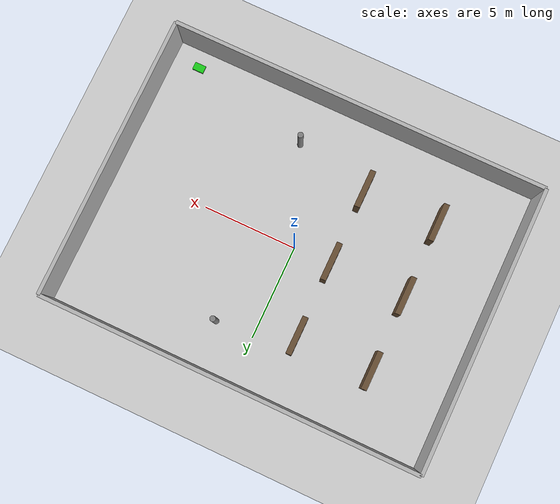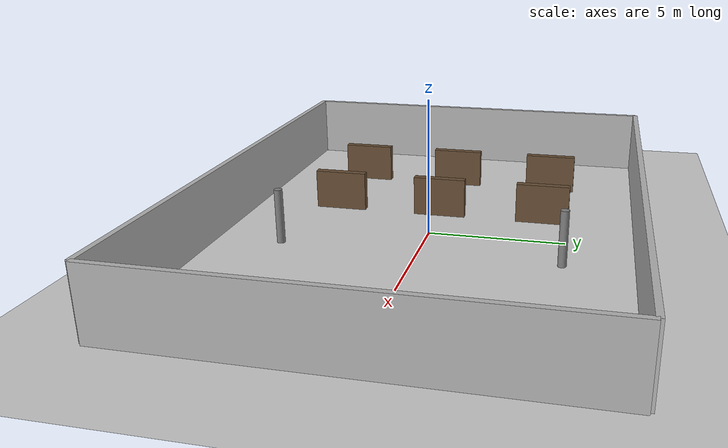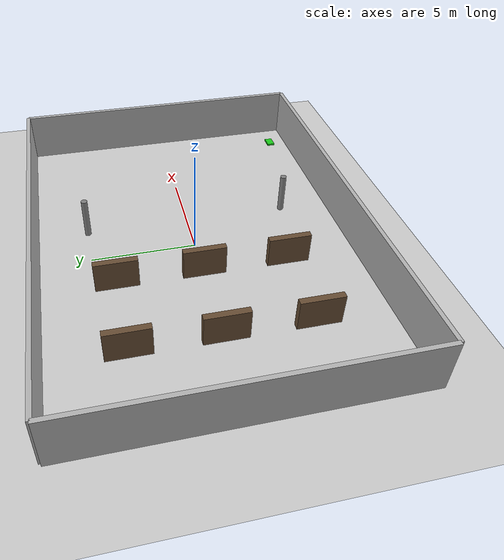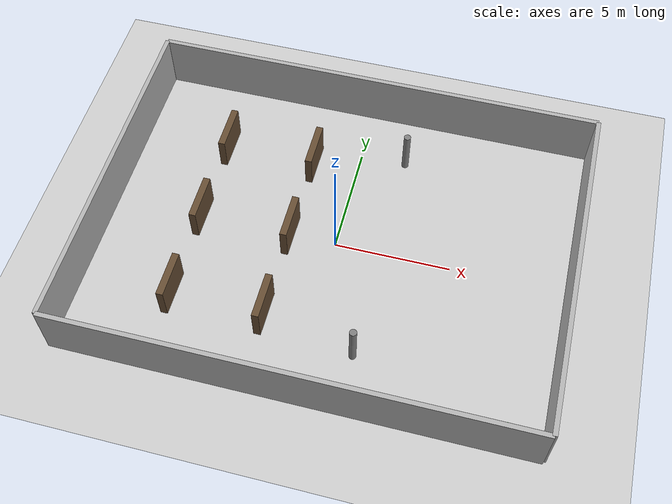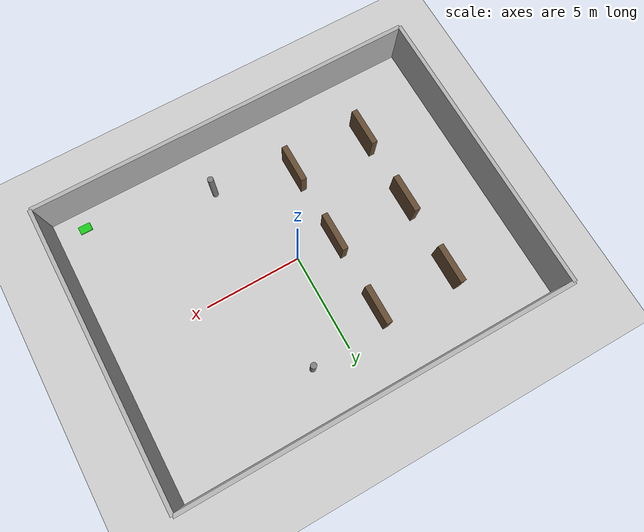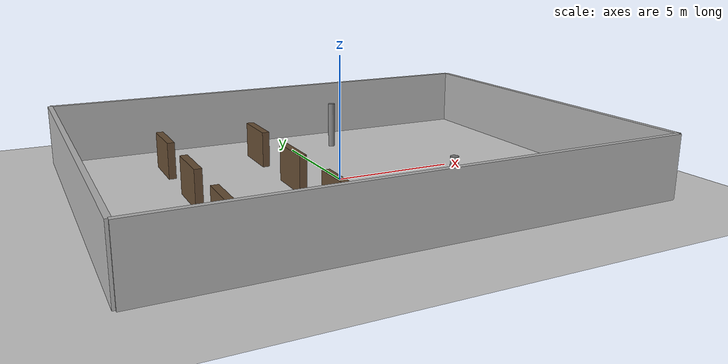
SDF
<?xml version="1.0" ?>
<sdf version="1.7">
  <world name="glad_warehouse">

    <gravity>0 0 -9.81</gravity>
    <magnetic_field>6e-06 2.3e-05 -4.2e-05</magnetic_field>
    <atmosphere type="adiabatic"/>

    <scene>
      <ambient>0.5 0.5 0.5 1.0</ambient>
      <background>0.7 0.7 0.7 1.0</background>
      <shadows>true</shadows>
    </scene>

    <physics type="ode">
      <max_step_size>0.001</max_step_size>
      <real_time_factor>1.0</real_time_factor>
      <real_time_update_rate>1000.0</real_time_update_rate>
    </physics>

    <!-- Gazebo Harmonic System Plugins -->
    <plugin filename="gz-sim-physics-system" name="gz::sim::systems::Physics" />
    <plugin filename="gz-sim-user-commands-system" name="gz::sim::systems::UserCommands" />
    <plugin filename="gz-sim-scene-broadcaster-system" name="gz::sim::systems::SceneBroadcaster" />
    <plugin filename="gz-sim-sensors-system" name="gz::sim::systems::Sensors">
      <render_engine>ogre2</render_engine>
    </plugin>
    <plugin filename="gz-sim-imu-system" name="gz::sim::systems::Imu" />

    <!-- Ground plane -->

    <include>
      <uri>model://ground_plane</uri>
    </include>

    <!-- Sunlight -->
    <include>
      <uri>model://sun</uri>
    </include>

    <!-- ============================================================
         Warehouse outer walls  (20 m x 15 m building)
         ============================================================ -->

    <!-- South wall -->
    <model name="wall_south">
      <static>true</static>
      <pose>0 -7.5 1.25 0 0 0</pose>
      <link name="link">
        <collision name="collision">
          <geometry><box><size>20.0 0.2 2.5</size></box></geometry>
        </collision>
        <visual name="visual">
          <geometry><box><size>20.0 0.2 2.5</size></box></geometry>
          <material><ambient>0.7 0.7 0.7 1</ambient></material>
        </visual>
      </link>
    </model>

    <!-- North wall -->
    <model name="wall_north">
      <static>true</static>
      <pose>0 7.5 1.25 0 0 0</pose>
      <link name="link">
        <collision name="collision">
          <geometry><box><size>20.0 0.2 2.5</size></box></geometry>
        </collision>
        <visual name="visual">
          <geometry><box><size>20.0 0.2 2.5</size></box></geometry>
          <material><ambient>0.7 0.7 0.7 1</ambient></material>
        </visual>
      </link>
    </model>

    <!-- West wall -->
    <model name="wall_west">
      <static>true</static>
      <pose>-10 0 1.25 0 0 0</pose>
      <link name="link">
        <collision name="collision">
          <geometry><box><size>0.2 15.0 2.5</size></box></geometry>
        </collision>
        <visual name="visual">
          <geometry><box><size>0.2 15.0 2.5</size></box></geometry>
          <material><ambient>0.7 0.7 0.7 1</ambient></material>
        </visual>
      </link>
    </model>

    <!-- East wall -->
    <model name="wall_east">
      <static>true</static>
      <pose>10 0 1.25 0 0 0</pose>
      <link name="link">
        <collision name="collision">
          <geometry><box><size>0.2 15.0 2.5</size></box></geometry>
        </collision>
        <visual name="visual">
          <geometry><box><size>0.2 15.0 2.5</size></box></geometry>
          <material><ambient>0.7 0.7 0.7 1</ambient></material>
        </visual>
      </link>
    </model>

    <!-- ============================================================
         Shelf obstacles (0.3 m wide x 2.0 m long x 1.5 m tall)
         ============================================================ -->

    <model name="shelf_1">
      <static>true</static>
      <pose>-6 -4 0.75 0 0 0</pose>
      <link name="link">
        <collision name="collision">
          <geometry><box><size>0.3 2.0 1.5</size></box></geometry>
        </collision>
        <visual name="visual">
          <geometry><box><size>0.3 2.0 1.5</size></box></geometry>
          <material><ambient>0.4 0.3 0.2 1</ambient></material>
        </visual>
      </link>
    </model>

    <model name="shelf_2">
      <static>true</static>
      <pose>-6 0 0.75 0 0 0</pose>
      <link name="link">
        <collision name="collision">
          <geometry><box><size>0.3 2.0 1.5</size></box></geometry>
        </collision>
        <visual name="visual">
          <geometry><box><size>0.3 2.0 1.5</size></box></geometry>
          <material><ambient>0.4 0.3 0.2 1</ambient></material>
        </visual>
      </link>
    </model>

    <model name="shelf_3">
      <static>true</static>
      <pose>-6 4 0.75 0 0 0</pose>
      <link name="link">
        <collision name="collision">
          <geometry><box><size>0.3 2.0 1.5</size></box></geometry>
        </collision>
        <visual name="visual">
          <geometry><box><size>0.3 2.0 1.5</size></box></geometry>
          <material><ambient>0.4 0.3 0.2 1</ambient></material>
        </visual>
      </link>
    </model>

    <model name="shelf_4">
      <static>true</static>
      <pose>-2 -4 0.75 0 0 0</pose>
      <link name="link">
        <collision name="collision">
          <geometry><box><size>0.3 2.0 1.5</size></box></geometry>
        </collision>
        <visual name="visual">
          <geometry><box><size>0.3 2.0 1.5</size></box></geometry>
          <material><ambient>0.4 0.3 0.2 1</ambient></material>
        </visual>
      </link>
    </model>

    <model name="shelf_5">
      <static>true</static>
      <pose>-2 0 0.75 0 0 0</pose>
      <link name="link">
        <collision name="collision">
          <geometry><box><size>0.3 2.0 1.5</size></box></geometry>
        </collision>
        <visual name="visual">
          <geometry><box><size>0.3 2.0 1.5</size></box></geometry>
          <material><ambient>0.4 0.3 0.2 1</ambient></material>
        </visual>
      </link>
    </model>

    <model name="shelf_6">
      <static>true</static>
      <pose>-2 4 0.75 0 0 0</pose>
      <link name="link">
        <collision name="collision">
          <geometry><box><size>0.3 2.0 1.5</size></box></geometry>
        </collision>
        <visual name="visual">
          <geometry><box><size>0.3 2.0 1.5</size></box></geometry>
          <material><ambient>0.4 0.3 0.2 1</ambient></material>
        </visual>
      </link>
    </model>

    <!-- ============================================================
         Charging station dock (south-east corner)
         ============================================================ -->
    <model name="charging_station">
      <static>true</static>
      <pose>8.5 -6.5 0.05 0 0 0</pose>
      <link name="link">
        <collision name="collision">
          <geometry><box><size>0.6 0.4 0.1</size></box></geometry>
        </collision>
        <visual name="visual">
          <geometry><box><size>0.6 0.4 0.1</size></box></geometry>
          <material><ambient>0.1 0.8 0.1 1</ambient></material>
        </visual>
      </link>
    </model>

    <!-- ============================================================
         Pillar obstacles
         ============================================================ -->
    <model name="pillar_1">
      <static>true</static>
      <pose>2 -5 1.0 0 0 0</pose>
      <link name="link">
        <collision name="collision">
          <geometry><cylinder><radius>0.15</radius><length>2.0</length></cylinder></geometry>
        </collision>
        <visual name="visual">
          <geometry><cylinder><radius>0.15</radius><length>2.0</length></cylinder></geometry>
          <material><ambient>0.5 0.5 0.5 1</ambient></material>
        </visual>
      </link>
    </model>

    <model name="pillar_2">
      <static>true</static>
      <pose>2 5 1.0 0 0 0</pose>
      <link name="link">
        <collision name="collision">
          <geometry><cylinder><radius>0.15</radius><length>2.0</length></cylinder></geometry>
        </collision>
        <visual name="visual">
          <geometry><cylinder><radius>0.15</radius><length>2.0</length></cylinder></geometry>
          <material><ambient>0.5 0.5 0.5 1</ambient></material>
        </visual>
      </link>
    </model>

  </world>
</sdf>
